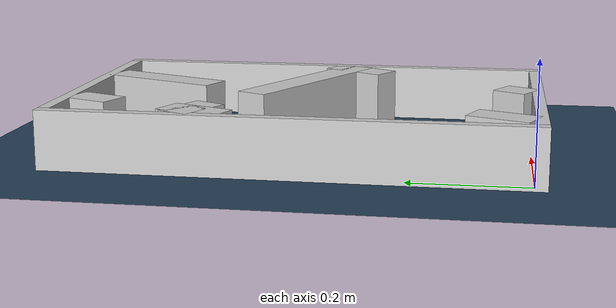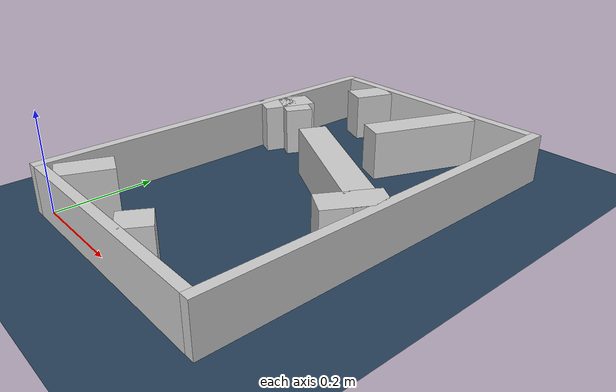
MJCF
<?xml version="1.0" ?>
<mujoco model="generated_real_template">
  <compiler angle="degree"/>
  <option timestep="0.002" integrator="implicitfast" iterations="100" cone="elliptic"/>
  <default>
    <geom density="1"/>
  </default>
  <asset>
    <texture builtin="gradient" height="3072" rgb1="0.3 0.5 0.7" rgb2="0 0 0" type="skybox" width="512"/>
    <texture builtin="checker" height="300" mark="edge" markrgb="0.8 0.8 0.8" name="groundplane" rgb1="0.2 0.3 0.4" rgb2="0.1 0.2 0.3" type="2d" width="300"/>
    <material name="groundplane" reflectance="0.2" texrepeat="5 5" texture="groundplane" texuniform="true"/>
  </asset>
  <worldbody>
    <light dir="0 0 -1" directional="true" pos="0 0 1.5"/>
    <geom name="floor" type="plane" condim="4" friction="0.5 0.005 0.001" material="groundplane" size="0 0 0.05"/>
    <body name="walls">
      <geom name="wall_boundary_left" type="box" condim="4" friction="1.0 0.005 0.0001" rgba="0.8 0.8 0.8 1" pos="-0.010000 0.387500 0.050000" euler="0 0 0.000000" size="0.010000 0.407500 0.050000"/>
      <geom name="wall_boundary_right" type="box" condim="4" friction="1.0 0.005 0.0001" rgba="0.8 0.8 0.8 1" pos="0.500000 0.387500 0.050000" euler="0 0 0.000000" size="0.010000 0.407500 0.050000"/>
      <geom name="wall_boundary_bottom" type="box" condim="4" friction="1.0 0.005 0.0001" rgba="0.8 0.8 0.8 1" pos="0.245000 -0.010000 0.050000" euler="0 0 0.000000" size="0.245000 0.010000 0.050000"/>
      <geom name="wall_boundary_top" type="box" condim="4" friction="1.0 0.005 0.0001" rgba="0.8 0.8 0.8 1" pos="0.245000 0.785000 0.050000" euler="0 0 0.000000" size="0.245000 0.010000 0.050000"/>
      <geom name="wall_inner_1_1" type="box" condim="4" friction="1.0 0.005 0.0001" rgba="0.8 0.8 0.8 1" pos="0.283504 0.026595 0.050000" euler="0 0 59.886864" size="0.030744 0.028500 0.050000"/>
      <geom name="wall_inner_1_2" type="box" condim="4" friction="1.0 0.005 0.0001" rgba="0.8 0.8 0.8 1" pos="0.454559 0.321525 0.050000" euler="0 0 59.886864" size="0.061363 0.028500 0.050000"/>
      <geom name="wall_inner_2_1" type="box" condim="4" friction="1.0 0.005 0.0001" rgba="0.8 0.8 0.8 1" pos="0.043323 0.549989 0.050000" euler="0 0 -26.559342" size="0.048434 0.028500 0.050000"/>
      <geom name="wall_inner_2_2" type="box" condim="4" friction="1.0 0.005 0.0001" rgba="0.8 0.8 0.8 1" pos="0.335551 0.403911 0.050000" euler="0 0 -26.559342" size="0.172670 0.028500 0.050000"/>
      <geom name="wall_inner_3_1" type="box" condim="4" friction="1.0 0.005 0.0001" rgba="0.8 0.8 0.8 1" pos="0.026821 0.541523 0.050000" euler="0 0 68.645261" size="0.055684 0.028500 0.050000"/>
      <geom name="wall_inner_3_2" type="box" condim="4" friction="1.0 0.005 0.0001" rgba="0.8 0.8 0.8 1" pos="0.102427 0.734897 0.050000" euler="0 0 68.645261" size="0.043060 0.028500 0.050000"/>
      <geom name="wall_inner_4_1" type="box" condim="4" friction="1.0 0.005 0.0001" rgba="0.8 0.8 0.8 1" pos="0.306456 0.669577 0.050000" euler="0 0 -112.027647" size="0.113725 0.028500 0.050000"/>
      <geom name="wall_inner_4_2" type="box" condim="4" friction="1.0 0.005 0.0001" rgba="0.8 0.8 0.8 1" pos="0.055526 0.049365 0.050000" euler="0 0 -112.027647" size="0.053252 0.028500 0.050000"/>
    </body>
  </worldbody>
</mujoco>
